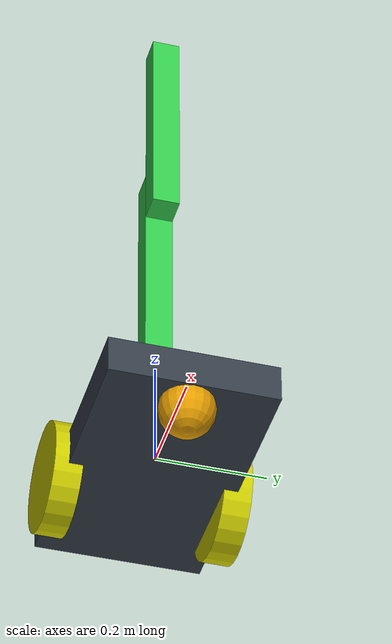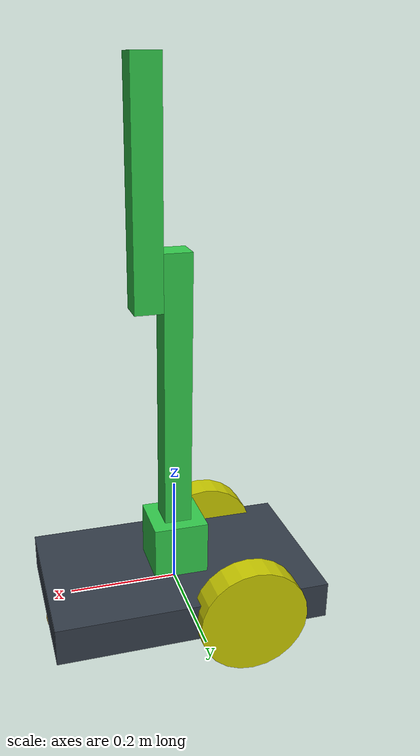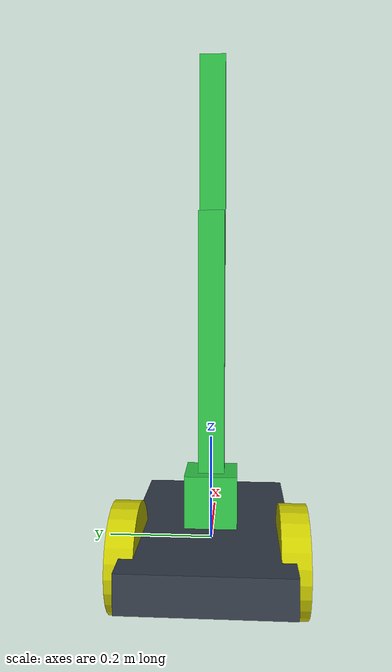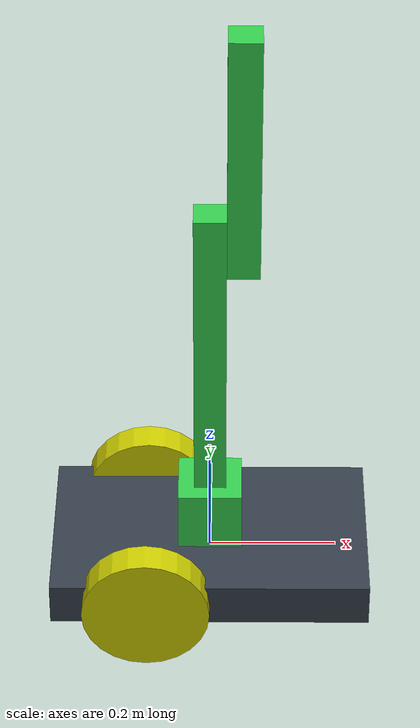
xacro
<?xml version='1.0'?>
<robot name="erl1_exercise1" xmlns:xacro="http://www.ros.org/wiki/xacro">
<!-- Robot used for Exercise1 -->

    <!-- INCLUDE -->
    <xacro:include filename="$(find erl1)/urdf/erl1.gazebo" />

    <!-- PROPERTY -->
    <xacro:property name="length_wheel" value="0.05" />
    <xacro:property name="radius_wheel" value="0.1" />

    <!-- MACRO for wheels -->
    <xacro:macro name="default_inertial" params="mass">
    <inertial>
        <mass value="${mass}" />
        <origin rpy="0 1.5707 1.5707" xyz="0 0 0"/>
        <inertia
        ixx="${mass*(3*radius_wheel**2+length_wheel**2)/12}" ixy="0" ixz="0"
        iyy="${mass*(3*radius_wheel**2+length_wheel**2)/12}" iyz="0"
        izz="${mass*radius_wheel**2/2}"/>
    </inertial>
    </xacro:macro>

    <xacro:macro name="wheel_geometry">
        <origin xyz="0 0 0" rpy="0 1.5707 1.5707"/>
        <geometry>
        <cylinder length="${length_wheel}" radius="${radius_wheel}"/>
        </geometry>
    </xacro:macro>

    <xacro:macro name="wheel_collision">
        <origin xyz="0 0 0" rpy="0 1.5707 1.5707"/>
        <geometry>
            <cylinder radius="${radius_wheel}" length="${length_wheel}"/>
        </geometry>
    </xacro:macro>

    <!-- MATERIAL -->
    <material name="blue">
        <color rgba="0.203125 0.23828125 0.28515625 1.0"/>
    </material>

    <material name="yellow">
        <color rgba="0.8 0.8 0 1.0"/>
    </material>

    <material name="green">
        <color rgba="0.2 0.8 0.3 1.0"/>
    </material>

    <!-- ......................................................................LINKS -->
    <!-- LINK CHASSIS -->
    <link name="link_chassis">
        <!-- inertial -->
        <inertial>
            <mass value="5"/>
            <origin rpy="0 0 0" xyz="0 0 0"/>
            <inertia ixx="0.0395416666667" ixy="0" ixz="0" iyy="0.106208333333" iyz="0" izz="0.141666666667"/>
        </inertial>

        <!-- body -->
        <collision name="collision_chassis">
            <geometry>
                <box size="0.5 0.3 0.07"/>
            </geometry>
        </collision>
        <visual>
            <origin rpy="0 0 0" xyz="0 0 0"/>
            <geometry>
                <box size="0.5 0.3 0.07"/>
            </geometry>
            <material name="blue"/>
        </visual>

        <!-- caster front -->
        <collision name="caster_front_collision">
            <origin rpy="0 0 0" xyz="0.2 0 -0.05"/>
            <geometry>
                <sphere radius="0.05"/>
            </geometry>
        </collision>
        <visual name="caster_front_visual">
            <origin rpy="0 0 0" xyz="0.2 0 -0.05"/>
            <geometry>
                <sphere radius="0.05"/>
            </geometry>
        </visual>
    </link>

    <!-- LINK LEFT-WHEEL -->
    <link name='left_wheel'>
        <xacro:default_inertial mass="5.0" />
        <collision>
            <xacro:wheel_collision/>
        </collision>
        <visual name='left_wheel_visual'>
            <xacro:wheel_geometry/>
            <material name="yellow"/>
        </visual>
    </link>

    <!-- LINK RIGHT-WHEEL -->
    <link name='right_wheel'>
        <xacro:default_inertial mass="5.0" />
        <collision>
            <xacro:wheel_collision/>
        </collision>
        <visual name='right_wheel_visual'>
            <xacro:wheel_geometry/>
            <material name="yellow"/>
        </visual>
    </link>

    <!-- LINK LINK1 -->
    <link name="link1_to_base">
        <inertial>
            <mass value="0.2"/>
            <origin rpy="0 0 0" xyz="0 0 0.05"/>
            <inertia ixx="0.0395416666667" ixy="0" ixz="0" iyy="0.106208333333" iyz="0" izz="0.141666666667"/>
        </inertial>

        <collision name="collision_link1_to_base">
            <origin rpy="0 0 0" xyz="0 0 0.05"/>
            <geometry>
                <box size="0.1 0.1 0.1"/>
            </geometry>
        </collision>
        <visual name="visual_link1_to_base">
            <origin rpy="0 0 0" xyz="0 0 0.05"/>
            <geometry>
                <box size="0.1 0.1 0.1"/>
            </geometry>
            <material name="green"/>
        </visual>
    </link>

    <!-- LINK LINK2 -->
    <link name="link2_to_link1">
        <inertial>
            <mass value="0.2"/>
            <origin rpy="0 0 0" xyz="0 0 0.25"/>
            <inertia ixx="0.0004167" ixy="0" ixz="0" iyy="0.0835417" iyz="0" izz="0.0835417"/>
        </inertial>

        <collision name="collision_link2_to_link1">
            <origin rpy="0 0 0" xyz="0 0 0.25"/>
            <geometry>
                <box size="0.05 0.05 0.5"/>
            </geometry>
        </collision>
        <visual name="visual_link2_to_link1">
            <origin rpy="0 0 0" xyz="0 0 0.25"/>
            <geometry>
                <box size="0.05 0.05 0.5"/>
            </geometry>
            <material name="green"/>
        </visual>
    </link>

    <!-- LINK LINK3 -->
    <link name="link3_to_link2">
        <inertial>
            <mass value="0.2"/>
            <origin rpy="0 0 0" xyz="0 0 0.2"/>
            <inertia ixx="0.0004167" ixy="0" ixz="0" iyy="0.0835417" iyz="0" izz="0.0835417"/>
        </inertial>

        <collision name="collision_link3_to_link2">
            <origin rpy="0 0 0" xyz="0.025 0 0.2"/>
            <geometry>
                <box size="0.05 0.05 0.4"/>
            </geometry>
        </collision>
        <visual name="visual_link3_to_link2">
            <origin rpy="0 0 0" xyz="0.025 0 0.2"/>
            <geometry>
                <box size="0.05 0.05 0.4"/>
            </geometry>
            <material name="green"/>
        </visual>
    </link>

    <!-- ......................................................................JOINTS -->
    <!-- JOINT LEFT-WHEEL -->
    <joint type="continuous" name="left_wheel_joint">
        <origin xyz="-0.1 0.15 0" rpy="0 0 0"/>
        <child link="left_wheel"/>
        <parent link="link_chassis"/>
        <axis xyz="0 1 0"/>
        <limit effort="100" velocity="10"/>
        <dynamics damping="1.0" friction="1.0"/>
    </joint>

    <!-- JOINT RIGHT-WHEEL -->
    <joint type="continuous" name="right_wheel_joint">
        <origin xyz="-0.1 -0.15 0" rpy="0 0 0"/>
        <child link="right_wheel"/>
        <parent link="link_chassis"/>
        <axis xyz="0 1 0"/>
        <limit effort="100" velocity="10"/>
        <dynamics damping="1.0" friction="1.0"/>
    </joint>

    <!-- JOINT LINK1 -->
    <joint type="continuous" name="link1_to_base_joint">
        <origin xyz="0 0 0.035" rpy="0 0 0"/>
        <child link="link1_to_base"/>
        <parent link="link_chassis"/>
        <axis xyz="0 0 1"/>
        <limit effort="5" velocity="1.0"/>
        <dynamics damping="1.0" friction="1.0"/>
    </joint>

    <!-- JOINT LINK2 -->
    <joint type="revolute" name="link2_to_link1_joint">
        <origin xyz="0 0 0.1" rpy="0 0 0"/>
        <child link="link2_to_link1"/>
        <parent link="link1_to_base"/>
        <axis xyz="0 1 0"/>
        <limit lower="-1.57" upper="1.57" effort="5" velocity="1.0"/>
        <dynamics damping="1.0" friction="1.0"/>
    </joint>

    <!-- JOINT LINK3 -->
    <joint type="revolute" name="link3_to_link2_joint">
        <origin xyz="0.025 0 0.4" rpy="0 0 0"/>
        <child link="link3_to_link2"/>
        <parent link="link2_to_link1"/>
        <axis xyz="1 0 0"/>
        <limit lower="-1.57" upper="1.57" effort="5" velocity="1.0"/>
        <dynamics damping="1.0" friction="1.0"/>
    </joint>

</robot>

<!-- ros2 launch urdf_tutorial display.launch.py model:=$PWD/src/erl1/urdf/model.xacro rvizconfig:=$PWD/src/erl1/rviz/urdf.rviz -->

<!-- PER LE ALTEZZE: -->
    <!-- SE considero il link1 rispetto alla base (chassis) allora devo considerare solo altezza_chassis/2 perchè il link della base usato come reference frame è a metà dello chassis -->
    <!-- SE considero il linkY rispetto linkX invece devo considerare l'altezza totale rispetto al linkX precedente, per sistemare il nuovo link alla base del nuovo linkY aggiunto -->
